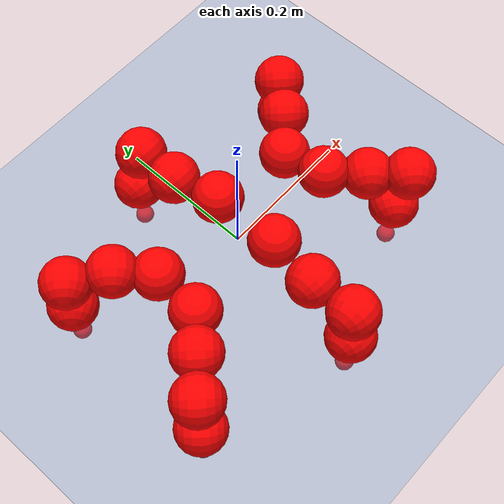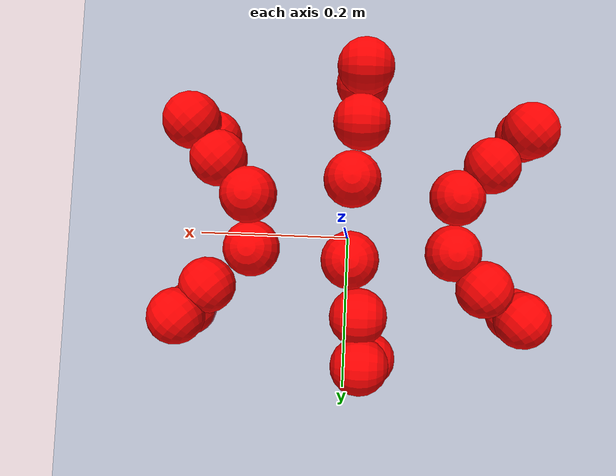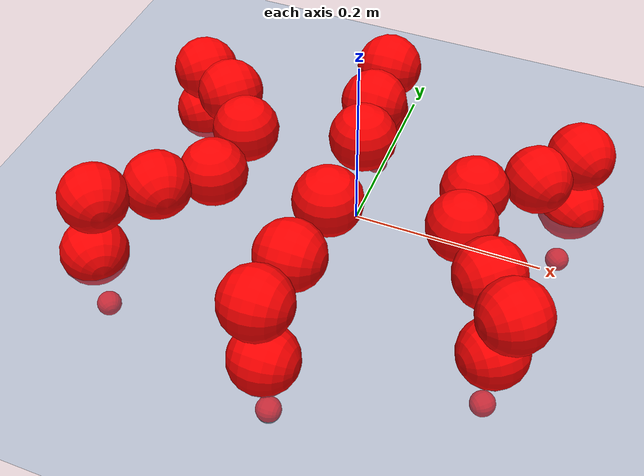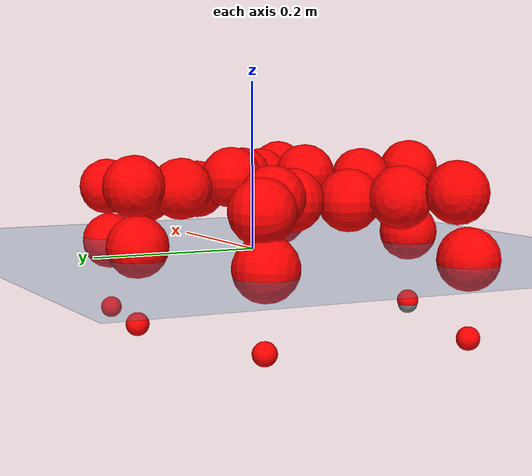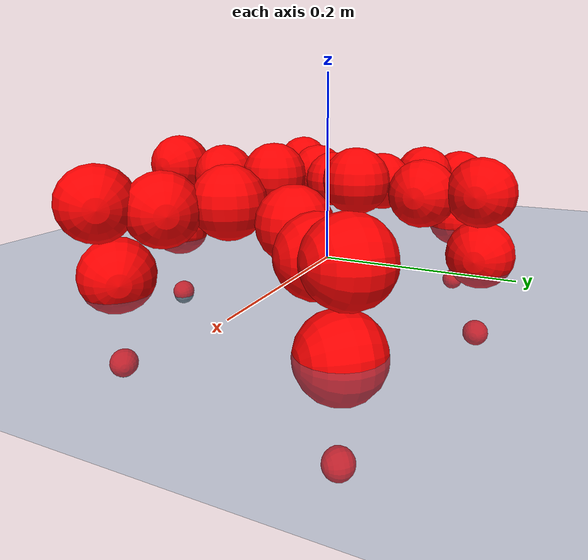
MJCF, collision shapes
<mujoco model="Golem">
  <compiler angle="radian" assetdir="assets" balanceinertia="true" inertiafromgeom="false"/>

  <option timestep="0.005" density="1.2" viscosity="2e-05"/>

  <size nkey="1"/>

  <visual>
    <quality shadowsize="8192"/>
    <map shadowclip="0.5"/>
  </visual>

  <default>
    <default class="/">
      <joint armature="0.01" damping="0.01" frictionloss="0.01"/>
      <geom contype="0" conaffinity="0" group="1" solref="-1000 -80"/>
      <site size="0.01 0.005 0.005" group="5"/>
      <general forcelimited="true" biastype="affine" gainprm="25" biasprm="0 -25 -0.5"/>
      <default class="visual">
        <geom type="mesh" group="2"/>
      </default>
      <default class="collision">
        <geom group="3"/>
      </default>
      <default class="foot">
        <geom size="0.01 0 0" condim="6" group="4" priority="1" solimp="0.015 1 0.01"/>
      </default>
      <default class="reward_collision_sphere">
        <geom group="5" rgba="1 0 0 1"/>
      </default>
    </default>
  </default>

  <asset>
    <texture type="skybox" colorspace="auto" name="//unnamed_texture_0" builtin="gradient" rgb1="0.95 0.95 0.95" rgb2="0.95 0.95 0.95" width="100" height="600"/>
    <texture type="2d" colorspace="auto" name="texplane" builtin="checker" rgb1="0.345 0.575 0.748" rgb2="0.345 0.575 0.748" markrgb="1 1 1" width="512" height="512"/>
    <material name="MatPlane" class="/" texture="texplane" texuniform="true" texrepeat="2 2" specular="0.9"/>
    <mesh name="body" class="/" file="body.stl" scale="0.001 0.001 0.001"/>
    <mesh name="coxa" class="/" file="coxa.stl" scale="0.001 0.001 0.001"/>
    <mesh name="femur" class="/" file="femur.stl" scale="0.001 0.001 0.001"/>
    <mesh name="tibia" class="/" file="tibia.stl" scale="0.001 0.001 0.001"/>
    <mesh name="tarsus" class="/" file="tarsus.stl" scale="0.001 0.001 0.001"/>
  </asset>

  <worldbody>
    <geom name="floor" class="/" size="100 100 0.125" type="plane" group="0" material="MatPlane"/>
    <light name="toplight_shadow" class="/" pos="0 0 5" dir="0.0990148 0.0990148 -0.990148" type="directional" ambient="0.04 0.04 0.04" diffuse="0.55 0.55 0.55" specular="0.12 0.12 0.12"/>
    <light name="toplight_fill" class="/" pos="0 0 5" dir="0.0990148 0.0990148 -0.990148" type="directional" castshadow="false" ambient="0.04 0.04 0.04" diffuse="0.3 0.3 0.3" specular="0.08 0.08 0.08"/>
    <body name="trunk" pos="-0.00581512 -0.0124205 -0.0083029" quat="1 0.000166775 0.00010838 8.37335e-05">
      <inertial pos="0.00675067 0.000861813 0.0139782" quat="0.999987 -0.00438392 0.0013859 0.00202547" mass="1.95825" diaginertia="0.00338778 0.00044638 0.0392174"/>
      <joint name="//unnamed_joint_0" type="free"/>
      <geom name="//unnamed_geom_1" class="/" pos="0 0 0.0839835" quat="1 0 0 0" type="mesh" rgba="0.9 0.9 0.9 1" mesh="body"/>
      <site name="imu" class="/" pos="0.11408 0.0446813 0.138914" size="0.00893229"/>
      <camera name="track" class="/" pos="0 -1.10713 0" quat="0.707107 0.707107 0 0" mode="trackcom"/>
      <camera name="ego_camera" class="/" pos="0.105804 0 0.131224" quat="-0.5 -0.5 0.5 0.5"/>
      <body name="coxa_RR" pos="-0.149231 -0.0573219 0.074942" quat="0.379739 -0.00200392 -0.00447203 -0.925081">
        <inertial pos="2.37853e-05 0.0137386 -0.013283" quat="0.999308 0.0215132 -0.0303381 0.000900473" mass="0.122339" diaginertia="0.00351178 0.000553061 0.0390115"/>
        <joint name="coxa_joint_RR" class="/" pos="0 0 0" axis="0.00278924 0.000122805 -0.999996" range="-3.3442 3.16305" armature="0.00813866" damping="0.0170075" frictionloss="0.00993563"/>
        <geom name="//unnamed_geom_2" class="/" type="mesh" rgba="0.2 0.2 0.2 1" mesh="coxa"/>
        <geom name="//unnamed_geom_3" class="reward_collision_sphere" size="0.0357291" pos="-0.0244164 0 0"/>
        <body name="femur_RR" pos="0.0347597 0.000245287 0.00426613" quat="0.495242 -0.503153 0.500037 0.501533">
          <inertial pos="0.0103563 -0.00193752 0.00367197" quat="1 -0.000630389 0.000436219 0.000569001" mass="0.136976" diaginertia="0.0034211 0.000491347 0.0369724"/>
          <joint name="femur_joint_RR" class="/" pos="0 0 0" axis="-0.000142116 0.000346739 -1" range="-2.95819 2.97825" armature="0.0136982" damping="0.0194329" frictionloss="0.00853425"/>
          <geom name="//unnamed_geom_4" class="/" type="mesh" rgba="0.9 0.9 0.9 1" mesh="femur"/>
          <geom name="//unnamed_geom_5" class="reward_collision_sphere" size="0.0357291"/>
          <body name="tibia_RR" pos="-0.00673494 -0.0637124 -0.00070552" quat="5.962e-05 1 0.000143709 -9.77092e-06">
            <inertial pos="-0.00739103 -0.000282269 -0.00354072" quat="0.999242 -0.0113803 0.0279375 -0.024623" mass="0.145914" diaginertia="0.00321682 0.000408803 0.0289722"/>
            <joint name="tibia_joint_RR" class="/" pos="0 0 0" axis="0.010397 -0.0480667 0.99879" stiffness="0.032554" range="-3.00023 3.43861" armature="0.0103391" damping="0" frictionloss="0.00785796"/>
            <geom name="//unnamed_geom_6" class="/" type="mesh" rgba="0.2 0.2 0.2 1" mesh="tibia"/>
            <geom name="//unnamed_geom_7" class="reward_collision_sphere" size="0.0357291"/>
            <body name="tarsus_RR" pos="0.0729568 0.0123881 -0.000982772" quat="1 6.6236e-05 -0.000683052 -0.000374303">
              <inertial pos="0.0382931 -0.0148919 0.0113212" quat="0.511687 0.506083 0.511452 0.469546" mass="0.123164" diaginertia="0.00331218 0.000376094 0.0331435"/>
              <joint name="tarsus_joint_RR" class="/" pos="0 0 0" axis="0.00737592 0.0378585 0.999256" stiffness="0.0111175" range="-3.41076 3.15917" armature="0.00658584" damping="0.0444145" frictionloss="0.00561171"/>
              <geom name="//unnamed_geom_8" class="/" type="mesh" rgba="0.9 0.9 0.9 1" mesh="tarsus"/>
              <geom name="foot_1" class="foot" size="0.00687991" pos="0.0911544 0 0" quat="0 -0.707107 0 0.707107"/>
              <geom name="//unnamed_geom_10" class="reward_collision_sphere" size="0.0357291"/>
              <geom name="//unnamed_geom_11" class="reward_collision_sphere" size="0.0133984" pos="0.0874919 0 0"/>
              <site name="foot_1" class="foot" pos="0.0911544 0 0" quat="0 -0.707107 0 0.707107" size="0.00893229"/>
            </body>
          </body>
        </body>
      </body>
      <body name="coxa_RM" pos="0.000997711 -0.0801072 0.096747" quat="0.706959 -0.000151544 0.000201993 -0.707254">
        <inertial pos="0.00205059 -0.00685324 -0.00473461" quat="1 -9.12687e-05 0.000228524 0.000286866" mass="0.150481" diaginertia="0.00337178 0.000493887 0.0371458"/>
        <joint name="coxa_joint_RM" class="/" pos="0 0 0" axis="-0.0304317 0.00751214 -0.999509" stiffness="0.0645765" range="-3.07158 3.22697" armature="0.00806732" damping="0.0314106" frictionloss="0.015419"/>
        <geom name="//unnamed_geom_12" class="/" type="mesh" rgba="0.2 0.2 0.2 1" mesh="coxa"/>
        <geom name="//unnamed_geom_13" class="reward_collision_sphere" size="0.0357291" pos="-0.0244164 0 0"/>
        <body name="femur_RM" pos="0.0482713 -0.00873228 -0.00545612" quat="0.500344 -0.50079 0.49992 0.498943">
          <inertial pos="-0.00124133 0.00776554 -0.0103421" quat="0.999822 0.0155167 -0.00999215 0.00395584" mass="0.14695" diaginertia="0.00420646 0.000563105 0.0390488"/>
          <joint name="femur_joint_RM" class="/" pos="0 0 0" axis="0.00900525 0.0164218 -0.999825" range="-3.21805 3.28829" armature="0.00971201" damping="0.055963" frictionloss="0.00896741"/>
          <geom name="//unnamed_geom_14" class="/" type="mesh" rgba="0.9 0.9 0.9 1" mesh="femur"/>
          <geom name="//unnamed_geom_15" class="reward_collision_sphere" size="0.0357291"/>
          <body name="tibia_RM" pos="-0.00870261 -0.0676449 -0.00289678" quat="0.000515916 1 0.000119512 -0.000373678">
            <inertial pos="0.013747 0.0127748 -0.00527919" quat="0.997566 0.0629544 -0.0266211 -0.0137629" mass="0.141568" diaginertia="0.00351452 0.00051416 0.0448112"/>
            <joint name="tibia_joint_RM" class="/" pos="0 0 0" axis="0.00340713 -0.00424729 0.999985" range="-3.1482 2.99939" armature="0.00527134" damping="0" frictionloss="0.0053026"/>
            <geom name="//unnamed_geom_16" class="/" type="mesh" rgba="0.2 0.2 0.2 1" mesh="tibia"/>
            <geom name="//unnamed_geom_17" class="reward_collision_sphere" size="0.0357291"/>
            <body name="tarsus_RM" pos="0.0793443 0.00265501 -0.0040128" quat="0.999998 0.00196261 0.000219073 1.78528e-05">
              <inertial pos="0.0499343 -0.000712816 0.00302367" quat="0.503864 0.496023 0.497177 0.502888" mass="0.126963" diaginertia="0.00292957 0.000476524 0.0339736"/>
              <joint name="tarsus_joint_RM" class="/" pos="0 0 0" axis="0.0191449 0.000836256 0.999816" stiffness="0.0324356" range="-3.13213 3.13641" armature="0.0151304" damping="0" frictionloss="0.00819505"/>
              <geom name="//unnamed_geom_18" class="/" type="mesh" rgba="0.9 0.9 0.9 1" mesh="tarsus"/>
              <geom name="foot_2" class="foot" size="0.0124968" pos="0.0911544 0 0" quat="0 -0.707107 0 0.707107"/>
              <geom name="//unnamed_geom_20" class="reward_collision_sphere" size="0.0357291"/>
              <geom name="//unnamed_geom_21" class="reward_collision_sphere" size="0.0133984" pos="0.0874919 0 0"/>
              <site name="foot_2" class="foot" pos="0.0911544 0 0" quat="0 -0.707107 0 0.707107" size="0.00893229"/>
            </body>
          </body>
        </body>
      </body>
      <body name="coxa_RF" pos="0.146463 -0.0503962 0.0883759" quat="0.923952 -6.72309e-06 0.000448892 -0.382509">
        <inertial pos="-0.0115496 0.000603417 -0.000635493" quat="0.99995 0.00865363 0.00235014 0.00444409" mass="0.14342" diaginertia="0.00302164 0.000506405 0.0455096"/>
        <joint name="coxa_joint_RF" class="/" pos="0 0 0" axis="0.0138658 0.000490704 -0.999904" stiffness="0.0238398" range="-2.96873 3.17448" armature="0.0124408" damping="0.0126791" frictionloss="0.00946837"/>
        <geom name="//unnamed_geom_22" class="/" type="mesh" rgba="0.2 0.2 0.2 1" mesh="coxa"/>
        <geom name="//unnamed_geom_23" class="reward_collision_sphere" size="0.0357291" pos="-0.0244164 0 0"/>
        <body name="femur_RF" pos="0.0353176 -0.00355124 -0.00326501" quat="0.499972 -0.499857 0.500019 0.500152">
          <inertial pos="0.000171037 0.00279921 0.0106948" quat="0.999756 -0.00865452 0.0180974 0.00924559" mass="0.163355" diaginertia="0.00395181 0.000435726 0.0382307"/>
          <joint name="femur_joint_RF" class="/" pos="0 0 0" axis="-0.00287914 -0.000165712 -0.999996" stiffness="0.044766" range="-3.37422 3.11424" armature="0.00498848" damping="0.0510372" frictionloss="0.00645952"/>
          <geom name="//unnamed_geom_24" class="/" type="mesh" rgba="0.9 0.9 0.9 1" mesh="femur"/>
          <geom name="//unnamed_geom_25" class="reward_collision_sphere" size="0.0357291"/>
          <body name="tibia_RF" pos="-0.00773244 -0.0552403 -0.00785053" quat="6.87588e-05 1 -9.20011e-05 0.000153349">
            <inertial pos="-0.00543043 -0.00890454 0.000319064" quat="0.999749 0.016153 0.0106511 0.0112732" mass="0.146844" diaginertia="0.00295865 0.000580825 0.0342165"/>
            <joint name="tibia_joint_RF" class="/" pos="0 0 0" axis="0.011699 0.00642406 0.999911" stiffness="0.00194931" range="-3.16817 3.20598" armature="0.00642591" damping="0.0226106" frictionloss="0.0137735"/>
            <geom name="//unnamed_geom_26" class="/" type="mesh" rgba="0.2 0.2 0.2 1" mesh="tibia"/>
            <geom name="//unnamed_geom_27" class="reward_collision_sphere" size="0.0357291"/>
            <body name="tarsus_RF" pos="0.0684064 -0.0127497 0.00528689" quat="0.999978 -0.00533894 -0.00216748 0.00317872">
              <inertial pos="0.0505389 0.0134748 0.00353532" quat="0.457577 0.553728 0.476316 0.507081" mass="0.162807" diaginertia="0.00302396 0.00061714 0.0397904"/>
              <joint name="tarsus_joint_RF" class="/" pos="0 0 0" axis="-0.0412909 -0.0291928 0.998721" stiffness="0.0500118" range="-3.40459 3.16952" armature="0.00273766" damping="0" frictionloss="0.00853513"/>
              <geom name="//unnamed_geom_28" class="/" type="mesh" rgba="0.9 0.9 0.9 1" mesh="tarsus"/>
              <geom name="foot_3" class="foot" size="0.0103642" pos="0.0911544 0 0" quat="0 -0.707107 0 0.707107"/>
              <geom name="//unnamed_geom_30" class="reward_collision_sphere" size="0.0357291"/>
              <geom name="//unnamed_geom_31" class="reward_collision_sphere" size="0.0133984" pos="0.0874919 0 0"/>
              <site name="foot_3" class="foot" pos="0.0911544 0 0" quat="0 -0.707107 0 0.707107" size="0.00893229"/>
            </body>
          </body>
        </body>
      </body>
      <body name="coxa_LR" pos="-0.145246 0.0470655 0.0770168" quat="0.380683 0.00183942 0.00114767 0.924703">
        <inertial pos="0.00461258 0.013946 -0.00436947" quat="0.998557 -0.0133252 0.0174439 0.0490106" mass="0.166761" diaginertia="0.0040584 0.000509495 0.0457166"/>
        <joint name="coxa_joint_LR" class="/" pos="0 0 0" axis="0.0204693 -0.0279746 -0.999399" stiffness="0.0473471" range="-3.00536 2.87145" armature="0.0145878" damping="0" frictionloss="0.0099877"/>
        <geom name="//unnamed_geom_32" class="/" type="mesh" rgba="0.2 0.2 0.2 1" mesh="coxa"/>
        <geom name="//unnamed_geom_33" class="reward_collision_sphere" size="0.0357291" pos="-0.0244164 0 0"/>
        <body name="femur_LR" pos="0.0337152 -0.00368851 0.00618378" quat="0.496956 -0.502728 0.502065 0.498226">
          <inertial pos="-0.00468507 0.00102275 -0.00325336" quat="0.997793 -0.028911 0.0537956 0.0260636" mass="0.162019" diaginertia="0.00365312 0.000535671 0.032707"/>
          <joint name="femur_joint_LR" class="/" pos="0 0 0" axis="0.022863 0.0280963 0.999344" stiffness="0.0558535" range="-3.42829 3.35435" armature="0.00569987" damping="0.0361869" frictionloss="0.00969103"/>
          <geom name="//unnamed_geom_34" class="/" type="mesh" rgba="0.9 0.9 0.9 1" mesh="femur"/>
          <geom name="//unnamed_geom_35" class="reward_collision_sphere" size="0.0357291"/>
          <body name="tibia_LR" pos="0.00872925 -0.0609174 0.00890143" quat="-0.00145629 0.999993 0.00201428 -0.0028856">
            <inertial pos="0.00128625 0.0131286 -0.00895428" quat="0.999151 0.0314989 0.0190782 -0.0184846" mass="0.142019" diaginertia="0.00317502 0.000478209 0.0396736"/>
            <joint name="tibia_joint_LR" class="/" pos="0 0 0" axis="1.45873e-05 -7.202e-05 -1" stiffness="0.00245495" range="-2.92281 2.98028" armature="0.0121538" damping="0.0774934" frictionloss="0.00510167"/>
            <geom name="//unnamed_geom_36" class="/" type="mesh" rgba="0.2 0.2 0.2 1" mesh="tibia"/>
            <geom name="//unnamed_geom_37" class="reward_collision_sphere" size="0.0357291"/>
            <body name="tarsus_LR" pos="0.0584053 5.37323e-05 -0.0047797" quat="0.999983 0.00509133 -0.00263958 0.00124293">
              <inertial pos="0.0464798 0.00227959 -0.000979681" quat="0.511162 0.463893 0.523524 0.499438" mass="0.133608" diaginertia="0.00311103 0.000469903 0.0336078"/>
              <joint name="tarsus_joint_LR" class="/" pos="0 0 0" axis="0.00129805 0.00443336 -0.999989" stiffness="0.057387" range="-2.9013 3.15379" armature="0.00925265" damping="0.0376294" frictionloss="0.0144426"/>
              <geom name="//unnamed_geom_38" class="/" type="mesh" rgba="0.9 0.9 0.9 1" mesh="tarsus"/>
              <geom name="foot_4" class="foot" size="0.00898657" pos="0.0911544 0 0" quat="0.707107 0 -0.707107 0"/>
              <geom name="//unnamed_geom_40" class="reward_collision_sphere" size="0.0357291"/>
              <geom name="//unnamed_geom_41" class="reward_collision_sphere" size="0.0133984" pos="0.0874919 0 0"/>
              <site name="foot_4" class="foot" pos="0.0911544 0 0" quat="0.707107 0 -0.707107 0" size="0.00893229"/>
            </body>
          </body>
        </body>
      </body>
      <body name="coxa_LM" pos="0.000604372 0.0676083 0.0954636" quat="0.708399 -0.00149443 -0.00304408 0.705804">
        <inertial pos="0.0115949 0.00458002 0.0103615" quat="0.99998 0.00442922 -0.00378918 0.00231876" mass="0.137318" diaginertia="0.00401234 0.000597352 0.0322033"/>
        <joint name="coxa_joint_LM" class="/" pos="0 0 0" axis="0.00432957 0.0108681 -0.999932" range="-3.1403 3.14584" armature="0.00349414" damping="0.07338" frictionloss="0.0128933"/>
        <geom name="//unnamed_geom_42" class="/" type="mesh" rgba="0.2 0.2 0.2 1" mesh="coxa"/>
        <geom name="//unnamed_geom_43" class="reward_collision_sphere" size="0.0357291" pos="-0.0244164 0 0"/>
        <body name="femur_LM" pos="0.0447252 0.0128515 -0.0106388" quat="0.500014 -0.499497 0.500018 0.50047">
          <inertial pos="-0.0105694 -0.00721866 -0.0124071" quat="0.999995 -0.00258006 -0.00111421 0.00138278" mass="0.143267" diaginertia="0.00328778 0.000513997 0.0419811"/>
          <joint name="femur_joint_LM" class="/" pos="0 0 0" axis="-0.0231548 -0.00901979 0.999691" range="-3.17499 3.34824" armature="0.00565114" damping="0.0177206" frictionloss="0.00482026"/>
          <geom name="//unnamed_geom_44" class="/" type="mesh" rgba="0.9 0.9 0.9 1" mesh="femur"/>
          <geom name="//unnamed_geom_45" class="reward_collision_sphere" size="0.0357291"/>
          <body name="tibia_LM" pos="-0.00468471 -0.0589722 0.00349143" quat="-0.000100766 1 -2.84608e-05 -0.000194139">
            <inertial pos="0.00822372 0.0136458 -0.014472" quat="0.99734 0.00468923 0.0123224 0.0716817" mass="0.148619" diaginertia="0.00341698 0.000532813 0.0446609"/>
            <joint name="tibia_joint_LM" class="/" pos="0 0 0" axis="-0.0492509 0.0144404 -0.998682" stiffness="0.07088" range="-3.14327 3.3867" armature="0.00627011" damping="0" frictionloss="0.00838671"/>
            <geom name="//unnamed_geom_46" class="/" type="mesh" rgba="0.2 0.2 0.2 1" mesh="tibia"/>
            <geom name="//unnamed_geom_47" class="reward_collision_sphere" size="0.0357291"/>
            <body name="tarsus_LM" pos="0.0671283 0.000621129 -0.0122187" quat="0.999996 0.00105768 -0.000981562 0.00225511">
              <inertial pos="0.0556719 0.00421988 0.0113707" quat="0.454486 0.549306 0.501539 0.490066" mass="0.132273" diaginertia="0.00393438 0.000637507 0.0469632"/>
              <joint name="tarsus_joint_LM" class="/" pos="0 0 0" axis="0.0588344 0.00607356 -0.998249" stiffness="0.0346361" range="-3.13706 3.3807" armature="0.0120394" damping="0" frictionloss="0.00879841"/>
              <geom name="//unnamed_geom_48" class="/" type="mesh" rgba="0.9 0.9 0.9 1" mesh="tarsus"/>
              <geom name="foot_5" class="foot" size="0.00871023" pos="0.0911544 0 0" quat="0.707107 0 -0.707107 0"/>
              <geom name="//unnamed_geom_50" class="reward_collision_sphere" size="0.0357291"/>
              <geom name="//unnamed_geom_51" class="reward_collision_sphere" size="0.0133984" pos="0.0874919 0 0"/>
              <site name="foot_5" class="foot" pos="0.0911544 0 0" quat="0.707107 0 -0.707107 0" size="0.00893229"/>
            </body>
          </body>
        </body>
      </body>
      <body name="coxa_LF" pos="0.141855 0.0498032 0.0730291" quat="0.921869 -0.00297946 0.00223695 0.387483">
        <inertial pos="-0.00425842 0.00367974 -0.00558852" quat="0.997357 -0.0249358 0.00637362 0.0679481" mass="0.114932" diaginertia="0.00375842 0.000422698 0.0443888"/>
        <joint name="coxa_joint_LF" class="/" pos="0 0 0" axis="-0.021332 -0.011606 -0.999705" stiffness="0.0360555" range="-3.13463 3.1442" armature="0.009225" damping="0.0425889" frictionloss="0.00770523"/>
        <geom name="//unnamed_geom_52" class="/" type="mesh" rgba="0.2 0.2 0.2 1" mesh="coxa"/>
        <geom name="//unnamed_geom_53" class="reward_collision_sphere" size="0.0357291" pos="-0.0244164 0 0"/>
        <body name="femur_LF" pos="0.049121 -0.00558851 -0.00895357" quat="0.500887 -0.499492 0.500015 0.499604">
          <inertial pos="-0.0119892 0.00487443 -0.0133503" quat="0.999655 -0.000430663 -0.00995371 -0.024308" mass="0.170463" diaginertia="0.00410276 0.000511181 0.0420176"/>
          <joint name="femur_joint_LF" class="/" pos="0 0 0" axis="0.0393435 0.0157816 0.999101" range="-3.16428 2.84413" armature="0.00421575" damping="0.0440968" frictionloss="0.0088116"/>
          <geom name="//unnamed_geom_54" class="/" type="mesh" rgba="0.9 0.9 0.9 1" mesh="femur"/>
          <geom name="//unnamed_geom_55" class="reward_collision_sphere" size="0.0357291"/>
          <body name="tibia_LF" pos="-0.0102525 -0.0520309 0.00288661" quat="0.00243384 0.99999 -0.00153534 -0.00351146">
            <inertial pos="0.00319645 -0.0037479 0.00072896" quat="0.999996 0.00111292 0.00120074 0.00243874" mass="0.144964" diaginertia="0.00359249 0.000522679 0.039679"/>
            <joint name="tibia_joint_LF" class="/" pos="0 0 0" axis="-0.00126836 -0.0543718 -0.99852" range="-3.02441 2.95077" armature="0.0146456" damping="0.0104862" frictionloss="0.00682982"/>
            <geom name="//unnamed_geom_56" class="/" type="mesh" rgba="0.2 0.2 0.2 1" mesh="tibia"/>
            <geom name="//unnamed_geom_57" class="reward_collision_sphere" size="0.0357291"/>
            <body name="tarsus_LF" pos="0.071033 -0.00111143 0.00419177" quat="0.999996 0.00235289 0.00103339 -0.00135654">
              <inertial pos="0.0598087 -0.00532141 0.00177421" quat="0.496123 0.497794 0.50208 0.503963" mass="0.167859" diaginertia="0.00403414 0.000592415 0.0397536"/>
              <joint name="tarsus_joint_LF" class="/" pos="0 0 0" axis="0.00755661 -0.0335906 -0.999407" stiffness="0.0187172" range="-2.88417 2.87478" armature="0.00867973" damping="0.0416076" frictionloss="0.00915253"/>
              <geom name="//unnamed_geom_58" class="/" type="mesh" rgba="0.9 0.9 0.9 1" mesh="tarsus"/>
              <geom name="foot_6" class="foot" size="0.00877521" pos="0.0911544 0 0" quat="0.707107 0 -0.707107 0"/>
              <geom name="//unnamed_geom_60" class="reward_collision_sphere" size="0.0357291"/>
              <geom name="//unnamed_geom_61" class="reward_collision_sphere" size="0.0133984" pos="0.0874919 0 0"/>
              <site name="foot_6" class="foot" pos="0.0911544 0 0" quat="0.707107 0 -0.707107 0" size="0.00893229"/>
            </body>
          </body>
        </body>
      </body>
    </body>
  </worldbody>

  <contact>
    <pair class="/" geom1="floor" geom2="foot_1" name="//unnamed_contact_0"/>
    <pair class="/" geom1="floor" geom2="foot_2" name="//unnamed_contact_1"/>
    <pair class="/" geom1="floor" geom2="foot_3" name="//unnamed_contact_2"/>
    <pair class="/" geom1="floor" geom2="foot_4" name="//unnamed_contact_3"/>
    <pair class="/" geom1="floor" geom2="foot_5" name="//unnamed_contact_4"/>
    <pair class="/" geom1="floor" geom2="foot_6" name="//unnamed_contact_5"/>
  </contact>

  <actuator>
    <general name="coxa_joint_RR" class="/" joint="coxa_joint_RR" forcerange="-5.00723 5.00723" gainprm="21.9604" biasprm="0 -21.9604 -0.432879"/>
    <general name="femur_joint_RR" class="/" joint="femur_joint_RR" forcerange="-8.29801 8.29801" gainprm="21.9604" biasprm="0 -21.9604 -0.432879"/>
    <general name="tibia_joint_RR" class="/" joint="tibia_joint_RR" forcerange="-9.8649 9.8649" gainprm="21.9604" biasprm="0 -21.9604 -0.432879"/>
    <general name="tarsus_joint_RR" class="/" joint="tarsus_joint_RR" forcerange="-8.68008 8.68008" gainprm="21.9604" biasprm="0 -21.9604 -0.432879"/>
    <general name="coxa_joint_RM" class="/" joint="coxa_joint_RM" forcerange="-6.61011 6.61011" gainprm="21.9604" biasprm="0 -21.9604 -0.432879"/>
    <general name="femur_joint_RM" class="/" joint="femur_joint_RM" forcerange="-6.45834 6.45834" gainprm="21.9604" biasprm="0 -21.9604 -0.432879"/>
    <general name="tibia_joint_RM" class="/" joint="tibia_joint_RM" forcerange="-10.0839 10.0839" gainprm="21.9604" biasprm="0 -21.9604 -0.432879"/>
    <general name="tarsus_joint_RM" class="/" joint="tarsus_joint_RM" forcerange="-7.62843 7.62843" gainprm="21.9604" biasprm="0 -21.9604 -0.432879"/>
    <general name="coxa_joint_RF" class="/" joint="coxa_joint_RF" forcerange="-6.62415 6.62415" gainprm="21.9604" biasprm="0 -21.9604 -0.432879"/>
    <general name="femur_joint_RF" class="/" joint="femur_joint_RF" forcerange="-2.95419 2.95419" gainprm="21.9604" biasprm="0 -21.9604 -0.432879"/>
    <general name="tibia_joint_RF" class="/" joint="tibia_joint_RF" forcerange="-4.74762 4.74762" gainprm="21.9604" biasprm="0 -21.9604 -0.432879"/>
    <general name="tarsus_joint_RF" class="/" joint="tarsus_joint_RF" forcerange="-2.97728 2.97728" gainprm="21.9604" biasprm="0 -21.9604 -0.432879"/>
    <general name="coxa_joint_LR" class="/" joint="coxa_joint_LR" forcerange="-9.28878 9.28878" gainprm="21.9604" biasprm="0 -21.9604 -0.432879"/>
    <general name="femur_joint_LR" class="/" joint="femur_joint_LR" forcerange="-5.14775 5.14775" gainprm="21.9604" biasprm="0 -21.9604 -0.432879"/>
    <general name="tibia_joint_LR" class="/" joint="tibia_joint_LR" forcerange="-4.51262 4.51262" gainprm="21.9604" biasprm="0 -21.9604 -0.432879"/>
    <general name="tarsus_joint_LR" class="/" joint="tarsus_joint_LR" forcerange="-6.27286 6.27286" gainprm="21.9604" biasprm="0 -21.9604 -0.432879"/>
    <general name="coxa_joint_LM" class="/" joint="coxa_joint_LM" forcerange="-4.82428 4.82428" gainprm="21.9604" biasprm="0 -21.9604 -0.432879"/>
    <general name="femur_joint_LM" class="/" joint="femur_joint_LM" forcerange="-6.25387 6.25387" gainprm="21.9604" biasprm="0 -21.9604 -0.432879"/>
    <general name="tibia_joint_LM" class="/" joint="tibia_joint_LM" forcerange="-9.70566 9.70566" gainprm="21.9604" biasprm="0 -21.9604 -0.432879"/>
    <general name="tarsus_joint_LM" class="/" joint="tarsus_joint_LM" forcerange="-8.86834 8.86834" gainprm="21.9604" biasprm="0 -21.9604 -0.432879"/>
    <general name="coxa_joint_LF" class="/" joint="coxa_joint_LF" forcerange="-5.23142 5.23142" gainprm="21.9604" biasprm="0 -21.9604 -0.432879"/>
    <general name="femur_joint_LF" class="/" joint="femur_joint_LF" forcerange="-9.37777 9.37777" gainprm="21.9604" biasprm="0 -21.9604 -0.432879"/>
    <general name="tibia_joint_LF" class="/" joint="tibia_joint_LF" forcerange="-6.65151 6.65151" gainprm="21.9604" biasprm="0 -21.9604 -0.432879"/>
    <general name="tarsus_joint_LF" class="/" joint="tarsus_joint_LF" forcerange="-6.51257 6.51257" gainprm="21.9604" biasprm="0 -21.9604 -0.432879"/>
  </actuator>

  <sensor>
    <gyro site="imu" name="imu_angular_velocity"/>
    <velocimeter site="imu" name="imu_linear_velocity"/>
    <framelinvel objtype="site" objname="foot_1" name="foot_1_global_linear_velocity"/>
    <framelinvel objtype="site" objname="foot_2" name="foot_2_global_linear_velocity"/>
    <framelinvel objtype="site" objname="foot_3" name="foot_3_global_linear_velocity"/>
    <framelinvel objtype="site" objname="foot_4" name="foot_4_global_linear_velocity"/>
    <framelinvel objtype="site" objname="foot_5" name="foot_5_global_linear_velocity"/>
    <framelinvel objtype="site" objname="foot_6" name="foot_6_global_linear_velocity"/>
  </sensor>

  <keyframe>
    <key name="home" qpos="0 0 0.1457 1 0 0 0 0 0 0 0 0 0 0 0 0 0 0 0 0 0 0 0 0 0 0 0 0 0 0 0"/>
  </keyframe>
</mujoco>
